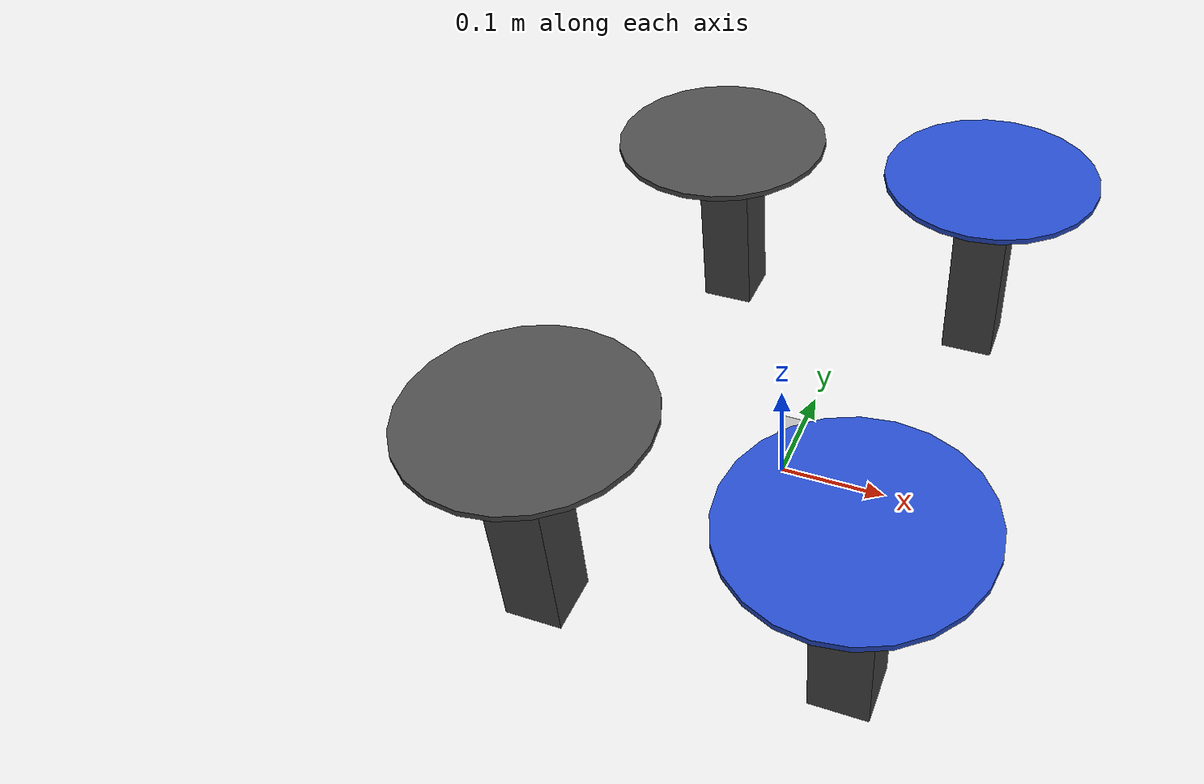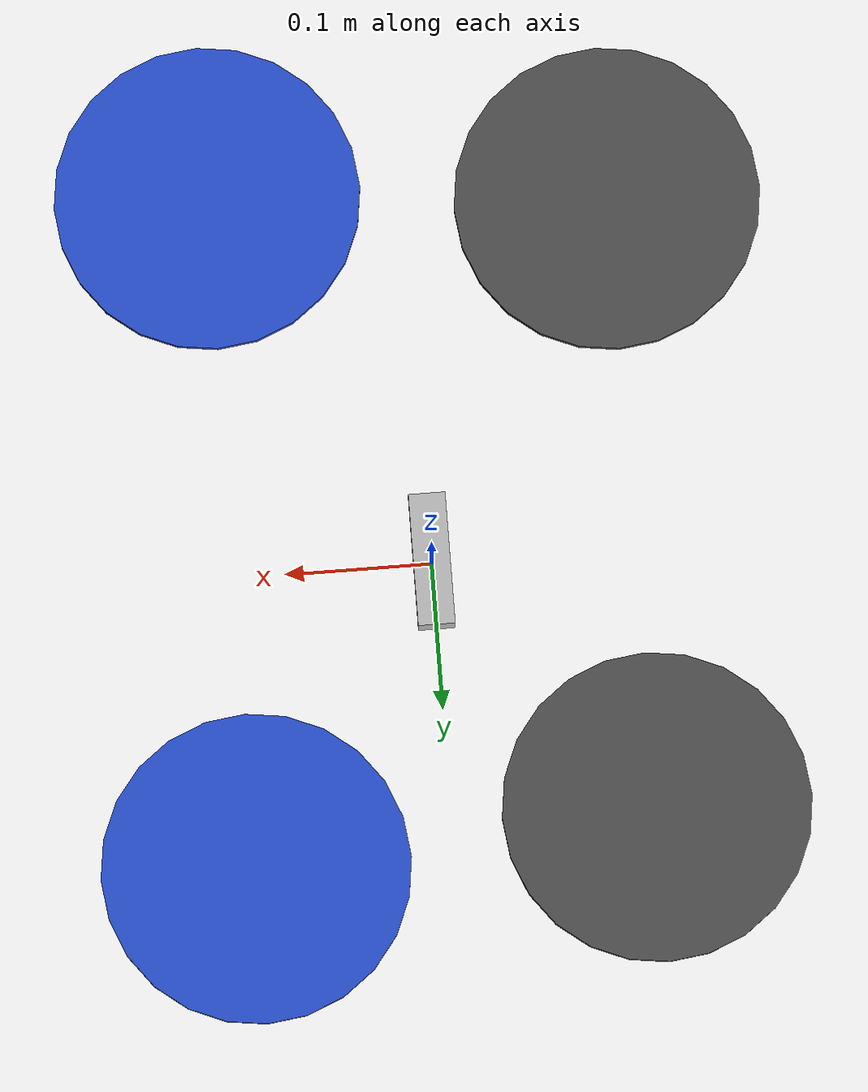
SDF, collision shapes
<?xml version='1.0'?>
<sdf version="1.6" >
  <model name="drone_with_camera">
    <include>
      <uri>model://iris_base</uri>
    </include>

    <include>
  <uri>model://realsense_camera</uri>
  </include>

    <joint name="camera_mount" type="fixed">
      <child>realsense_camera::camera_bottom_screw_frame</child>
      <parent>iris::base_link</parent>
      <axis>
        <xyz>0 0 1</xyz>
        <limit>
          <upper>0</upper>
          <lower>0</lower>
        </limit>
      </axis>
    </joint>

    <!-- plugins -->
    <plugin name="rotor_0_blade_1" filename="libLiftDragPlugin.so">
      <a0>0.3</a0>
      <alpha_stall>1.4</alpha_stall>
      <cla>4.2500</cla>
      <cda>0.10</cda>
      <cma>0.00</cma>
      <cla_stall>-0.025</cla_stall>
      <cda_stall>0.0</cda_stall>
      <cma_stall>0.0</cma_stall>
      <area>0.002</area>
      <air_density>1.2041</air_density>
      <cp>0.084 0 0</cp>
      <forward>0 1 0</forward>
      <upward>0 0 1</upward>
      <link_name>iris::rotor_0</link_name>
    </plugin>
    <plugin name="rotor_0_blade_2" filename="libLiftDragPlugin.so">
      <a0>0.3</a0>
      <alpha_stall>1.4</alpha_stall>
      <cla>4.2500</cla>
      <cda>0.10</cda>
      <cma>0.00</cma>
      <cla_stall>-0.025</cla_stall>
      <cda_stall>0.0</cda_stall>
      <cma_stall>0.0</cma_stall>
      <area>0.002</area>
      <air_density>1.2041</air_density>
      <cp>-0.084 0 0</cp>
      <forward>0 -1 0</forward>
      <upward>0 0 1</upward>
      <link_name>iris::rotor_0</link_name>
    </plugin>

    <plugin name="rotor_1_blade_1" filename="libLiftDragPlugin.so">
      <a0>0.3</a0>
      <alpha_stall>1.4</alpha_stall>
      <cla>4.2500</cla>
      <cda>0.10</cda>
      <cma>0.00</cma>
      <cla_stall>-0.025</cla_stall>
      <cda_stall>0.0</cda_stall>
      <cma_stall>0.0</cma_stall>
      <area>0.002</area>
      <air_density>1.2041</air_density>
      <cp>0.084 0 0</cp>
      <forward>0 1 0</forward>
      <upward>0 0 1</upward>
      <link_name>iris::rotor_1</link_name>
    </plugin>
    <plugin name="rotor_1_blade_2" filename="libLiftDragPlugin.so">
      <a0>0.3</a0>
      <alpha_stall>1.4</alpha_stall>
      <cla>4.2500</cla>
      <cda>0.10</cda>
      <cma>0.00</cma>
      <cla_stall>-0.025</cla_stall>
      <cda_stall>0.0</cda_stall>
      <cma_stall>0.0</cma_stall>
      <area>0.002</area>
      <air_density>1.2041</air_density>
      <cp>-0.084 0 0</cp>
      <forward>0 -1 0</forward>
      <upward>0 0 1</upward>
      <link_name>iris::rotor_1</link_name>
    </plugin>

    <plugin name="rotor_2_blade_1" filename="libLiftDragPlugin.so">
      <a0>0.3</a0>
      <alpha_stall>1.4</alpha_stall>
      <cla>4.2500</cla>
      <cda>0.10</cda>
      <cma>0.00</cma>
      <cla_stall>-0.025</cla_stall>
      <cda_stall>0.0</cda_stall>
      <cma_stall>0.0</cma_stall>
      <area>0.002</area>
      <air_density>1.2041</air_density>
      <cp>0.084 0 0</cp>
      <forward>0 -1 0</forward>
      <upward>0 0 1</upward>
      <link_name>iris::rotor_2</link_name>
    </plugin>
    <plugin name="rotor_2_blade_2" filename="libLiftDragPlugin.so">
      <a0>0.3</a0>
      <alpha_stall>1.4</alpha_stall>
      <cla>4.2500</cla>
      <cda>0.10</cda>
      <cma>0.00</cma>
      <cla_stall>-0.025</cla_stall>
      <cda_stall>0.0</cda_stall>
      <cma_stall>0.0</cma_stall>
      <area>0.002</area>
      <air_density>1.2041</air_density>
      <cp>-0.084 0 0</cp>
      <forward>0 1 0</forward>
      <upward>0 0 1</upward>
      <link_name>iris::rotor_2</link_name>
    </plugin>

    <plugin name="rotor_3_blade_1" filename="libLiftDragPlugin.so">
      <a0>0.3</a0>
      <alpha_stall>1.4</alpha_stall>
      <cla>4.2500</cla>
      <cda>0.10</cda>
      <cma>0.00</cma>
      <cla_stall>-0.025</cla_stall>
      <cda_stall>0.0</cda_stall>
      <cma_stall>0.0</cma_stall>
      <area>0.002</area>
      <air_density>1.2041</air_density>
      <cp>0.084 0 0</cp>
      <forward>0 -1 0</forward>
      <upward>0 0 1</upward>
      <link_name>iris::rotor_3</link_name>
    </plugin>
    <plugin name="rotor_3_blade_2" filename="libLiftDragPlugin.so">
      <a0>0.3</a0>
      <alpha_stall>1.4</alpha_stall>
      <cla>4.2500</cla>
      <cda>0.10</cda>
      <cma>0.00</cma>
      <cla_stall>-0.025</cla_stall>
      <cda_stall>0.0</cda_stall>
      <cma_stall>0.0</cma_stall>
      <area>0.002</area>
      <air_density>1.2041</air_density>
      <cp>-0.084 0 0</cp>
      <forward>0 1 0</forward>
      <upward>0 0 1</upward>
      <link_name>iris::rotor_3</link_name>
    </plugin>
    <plugin name="arducopter_plugin" filename="libArduPilotPlugin.so">
      <fdm_addr>127.0.0.1</fdm_addr>
      <fdm_port_in>9002</fdm_port_in>
      <fdm_port_out>9003</fdm_port_out>
      <!--
          Require by APM :
          Only change model and gazebo from XYZ to XY-Z coordinates
      -->
      <modelXYZToAirplaneXForwardZDown>0 0 0 3.141593 0 0</modelXYZToAirplaneXForwardZDown>
      <gazeboXYZToNED>0 0 0 3.141593 0 0</gazeboXYZToNED>
      <imuName>iris::iris/imu_link::imu_sensor</imuName>
      <connectionTimeoutMaxCount>5</connectionTimeoutMaxCount>
      <control channel="0">
      <!--
          incoming control command [0, 1]
          so offset it by 0 to get [0, 1]
          and divide max target by 1.
          offset = 0
          multiplier = 838 max rpm / 1 = 838
        -->
        <type>VELOCITY</type>
        <offset>0</offset>
        <p_gain>0.20</p_gain>
        <i_gain>0</i_gain>
        <d_gain>0</d_gain>
        <i_max>0</i_max>
        <i_min>0</i_min>
        <cmd_max>2.5</cmd_max>
        <cmd_min>-2.5</cmd_min>
        <jointName>iris::rotor_0_joint</jointName>
        <multiplier>838</multiplier>
        <controlVelocitySlowdownSim>1</controlVelocitySlowdownSim>
      </control>
      <control channel="1">
        <type>VELOCITY</type>
        <offset>0</offset>
        <p_gain>0.20</p_gain>
        <i_gain>0</i_gain>
        <d_gain>0</d_gain>
        <i_max>0</i_max>
        <i_min>0</i_min>
        <cmd_max>2.5</cmd_max>
        <cmd_min>-2.5</cmd_min>
        <jointName>iris::rotor_1_joint</jointName>
        <multiplier>838</multiplier>
        <controlVelocitySlowdownSim>1</controlVelocitySlowdownSim>
      </control>
      <control channel="2">
        <type>VELOCITY</type>
        <offset>0</offset>
        <p_gain>0.20</p_gain>
        <i_gain>0</i_gain>
        <d_gain>0</d_gain>
        <i_max>0</i_max>
        <i_min>0</i_min>
        <cmd_max>2.5</cmd_max>
        <cmd_min>-2.5</cmd_min>
        <jointName>iris::rotor_2_joint</jointName>
        <multiplier>-838</multiplier>
        <controlVelocitySlowdownSim>1</controlVelocitySlowdownSim>
      </control>
      <control channel="3">
        <type>VELOCITY</type>
        <offset>0</offset>
        <p_gain>0.20</p_gain>
        <i_gain>0</i_gain>
        <d_gain>0</d_gain>
        <i_max>0</i_max>
        <i_min>0</i_min>
        <cmd_max>2.5</cmd_max>
        <cmd_min>-2.5</cmd_min>
        <jointName>iris::rotor_3_joint</jointName>
        <multiplier>-838</multiplier>
        <controlVelocitySlowdownSim>1</controlVelocitySlowdownSim>
      </control>
    </plugin>

  </model>
</sdf>

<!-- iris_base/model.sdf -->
<sdf version='1.6'>
  <model name='iris'>
    <pose>0 0 0.194923 0 0 0</pose>
    <link name='base_link'>
      <velocity_decay>
        <linear>0.0</linear>
        <angular>0.0</angular>
      </velocity_decay>
      <inertial>
        <pose>0 0 0 0 0 0</pose>
        <mass>1.5</mass>
        <inertia>
          <ixx>0.008</ixx>
          <ixy>0</ixy>
          <ixz>0</ixz>
          <iyy>0.015</iyy>
          <iyz>0</iyz>
          <izz>0.017</izz>
        </inertia>
      </inertial>
      <collision name='base_link_collision_fl'>
        <pose>0.13 0.22 -0.08 0 0 0</pose>
        <geometry>
          <box>
            <size>0.05 0.05 0.18</size>
          </box>
        </geometry>
        <surface>
          <contact>
            <ode>
              <max_vel>100.0</max_vel>
              <min_depth>0.001</min_depth>
            </ode>
          </contact>
          <friction>
            <ode>
              <mu>1.0</mu>
              <mu2>1.0</mu2>
            </ode>
          </friction>
        </surface>
      </collision>
      <collision name='base_link_collision_fr'>
        <pose>0.13 -0.22 -0.08 0 0 0</pose>
        <geometry>
          <box>
            <size>0.05 0.05 0.18</size>
          </box>
        </geometry>
        <surface>
          <contact>
            <ode>
              <max_vel>100.0</max_vel>
              <min_depth>0.001</min_depth>
            </ode>
          </contact>
          <friction>
            <ode>
              <mu>1.0</mu>
              <mu2>1.0</mu2>
            </ode>
          </friction>
        </surface>
      </collision>
      <collision name='base_link_collision_br'>
        <pose>-0.13 -0.22 -0.08 0 0 0</pose>
        <geometry>
          <box>
            <size>0.05 0.05 0.18</size>
          </box>
        </geometry>
        <surface>
          <contact>
            <ode>
              <max_vel>100.0</max_vel>
              <min_depth>0.001</min_depth>
            </ode>
          </contact>
          <friction>
            <ode>
              <mu>1.0</mu>
              <mu2>1.0</mu2>
            </ode>
          </friction>
        </surface>
      </collision>
      <collision name='base_link_collision_bl'>
        <pose>-0.13 0.22 -0.08 0 0 0</pose>
        <geometry>
          <box>
            <size>0.05 0.05 0.18</size>
          </box>
        </geometry>
        <surface>
          <contact>
            <ode>
              <max_vel>100.0</max_vel>
              <min_depth>0.001</min_depth>
            </ode>
          </contact>
          <friction>
            <ode>
              <mu>1.0</mu>
              <mu2>1.0</mu2>
            </ode>
          </friction>
        </surface>
      </collision>
      <visual name='base_link_visual'>
        <geometry>
          <mesh>
            <uri>model://iris_base/meshes/iris.dae</uri>
          </mesh>
        </geometry>
        <material>
          <script>
            <name>Gazebo/DarkGrey</name>
          </script>
        </material>
      </visual>

      <visual name='front_left_leg_visual'>
        <pose>0.123 0.22 -0.11 0 0 0</pose>
        <geometry>
          <cylinder>
            <radius>0.005</radius>
            <length>0.17</length>
          </cylinder>
        </geometry>
        <material>
          <script>
            <name>Gazebo/FlatBlack</name>
            <uri>file://media/materials/scripts/gazebo.material</uri>
          </script>
        </material>
      </visual>
      <visual name='front_right_leg_visual'>
        <pose>0.123 -0.22 -0.11 0 0 0</pose>
        <geometry>
          <cylinder>
            <radius>0.005</radius>
            <length>0.17</length>
          </cylinder>
        </geometry>
        <material>
          <script>
            <name>Gazebo/FlatBlack</name>
            <uri>file://media/materials/scripts/gazebo.material</uri>
          </script>
        </material>
      </visual>
      <visual name='rear_left_leg_visual'>
        <pose>-0.140 0.21 -0.11 0 0 0</pose>
        <geometry>
          <cylinder>
            <radius>0.005</radius>
            <length>0.17</length>
          </cylinder>
        </geometry>
        <material>
          <script>
            <name>Gazebo/FlatBlack</name>
            <uri>file://media/materials/scripts/gazebo.material</uri>
          </script>
        </material>
      </visual>
      <visual name='rear_right_leg_visual'>
        <pose>-0.140 -0.21 -0.11 0 0 0</pose>
        <geometry>
          <cylinder>
            <radius>0.005</radius>
            <length>0.17</length>
          </cylinder>
        </geometry>
        <material>
          <script>
            <name>Gazebo/FlatBlack</name>
            <uri>file://media/materials/scripts/gazebo.material</uri>
          </script>
        </material>
      </visual>
    </link>
    <link name='iris/ground_truth/odometry_sensorgt_link'>
      <pose>0 0 0 0 -0 0</pose>
      <inertial>
        <pose>0 0 0 0 -0 0</pose>
        <mass>0.15</mass>
        <inertia>
          <ixx>0.0001</ixx>
          <ixy>0</ixy>
          <ixz>0</ixz>
          <iyy>0.0002</iyy>
          <iyz>0</iyz>
          <izz>0.0002</izz>
        </inertia>
      </inertial>
    </link>
    <joint name='iris/ground_truth/odometry_sensorgt_joint' type='revolute'>
      <child>iris/ground_truth/odometry_sensorgt_link</child>
      <parent>base_link</parent>
      <axis>
        <xyz>0 0 1</xyz>
        <limit>
          <lower>0</lower>
          <upper>0</upper>
          <effort>0</effort>
          <velocity>0</velocity>
        </limit>
        <dynamics>
          <damping>1.0</damping>
        </dynamics>
        <use_parent_model_frame>1</use_parent_model_frame>
      </axis>
      <physics>
        <ode>
          <implicit_spring_damper>1</implicit_spring_damper>
        </ode>
      </physics>
    </joint>
    <link name='iris/imu_link'>
      <inertial>
        <pose>0 0 0 0 0 0</pose>
        <mass>0.15</mass>
        <inertia>
          <ixx>0.00001</ixx>
          <ixy>0</ixy>
          <ixz>0</ixz>
          <iyy>0.00002</iyy>
          <iyz>0</iyz>
          <izz>0.00002</izz>
        </inertia>
      </inertial>
      <sensor name="imu_sensor" type="imu">
        <pose>0 0 0 3.141593 0 0</pose>
        <always_on>1</always_on>
        <update_rate>1000.0</update_rate>
      </sensor>
    </link>
    <joint name='iris/imu_joint' type='revolute'>
      <child>iris/imu_link</child>
      <parent>base_link</parent>
      <axis>
        <xyz>0 0 1</xyz>
        <limit>
          <lower>0</lower>
          <upper>0</upper>
          <effort>0</effort>
          <velocity>0</velocity>
        </limit>
        <dynamics>
          <damping>1.0</damping>
        </dynamics>
        <use_parent_model_frame>1</use_parent_model_frame>
      </axis>
      <physics>
        <ode>
          <implicit_spring_damper>1</implicit_spring_damper>
        </ode>
      </physics>
    </joint>
    <link name='rotor_0'>
      <pose>0.13 -0.22 0.023 0 -0 0</pose>
      <inertial>
        <pose>0 0 0 0 -0 0</pose>
        <mass>0.025</mass>
        <inertia>
          <ixx>9.75e-06</ixx>
          <ixy>0</ixy>
          <ixz>0</ixz>
          <iyy>0.000166704</iyy>
          <iyz>0</iyz>
          <izz>0.000167604</izz>
        </inertia>
      </inertial>
      <collision name='rotor_0_collision'>
        <pose>0 0 0 0 -0 0</pose>
        <geometry>
          <cylinder>
            <length>0.005</length>
            <radius>0.1</radius>
          </cylinder>
        </geometry>
        <surface>
          <contact>
            <ode/>
          </contact>
          <friction>
            <ode/>
          </friction>
        </surface>
      </collision>
      <visual name='rotor_0_visual'>
        <pose>0 0 0 0 -0 0</pose>
        <geometry>
          <mesh>
            <scale>1 1 1</scale>
            <uri>model://iris_base/meshes/iris_prop_ccw.dae</uri>
          </mesh>
        </geometry>
        <material>
          <script>
            <name>Gazebo/Blue</name>
            <uri>__default__</uri>
          </script>
        </material>
      </visual>
      <gravity>1</gravity>
      <velocity_decay/>
      <self_collide>0</self_collide>
    </link>
    <joint name='rotor_0_joint' type='revolute'>
      <child>rotor_0</child>
      <parent>base_link</parent>
      <axis>
        <xyz>0 0 1</xyz>
        <limit>
          <lower>-1e+16</lower>
          <upper>1e+16</upper>
        </limit>
        <dynamics>
          <damping>0.004</damping>
        </dynamics>
        <use_parent_model_frame>1</use_parent_model_frame>
      </axis>
      <physics>
        <ode>
          <implicit_spring_damper>1</implicit_spring_damper>
        </ode>
      </physics>
    </joint>
    <link name='rotor_1'>
      <pose>-0.13 0.2 0.023 0 -0 0</pose>
      <inertial>
        <pose>0 0 0 0 -0 0</pose>
        <mass>0.025</mass>
        <inertia>
          <ixx>9.75e-06</ixx>
          <ixy>0</ixy>
          <ixz>0</ixz>
          <iyy>0.000166704</iyy>
          <iyz>0</iyz>
          <izz>0.000167604</izz>
        </inertia>
      </inertial>
      <collision name='rotor_1_collision'>
        <pose>0 0 0 0 -0 0</pose>
        <geometry>
          <cylinder>
            <length>0.005</length>
            <radius>0.1</radius>
          </cylinder>
        </geometry>
        <surface>
          <contact>
            <ode/>
          </contact>
          <friction>
            <ode/>
          </friction>
        </surface>
      </collision>
      <visual name='rotor_1_visual'>
        <pose>0 0 0 0 -0 0</pose>
        <geometry>
          <mesh>
            <scale>1 1 1</scale>
            <uri>model://iris_base/meshes/iris_prop_ccw.dae</uri>
          </mesh>
        </geometry>
        <material>
          <script>
            <name>Gazebo/DarkGrey</name>
            <uri>__default__</uri>
          </script>
        </material>
      </visual>
      <gravity>1</gravity>
      <velocity_decay/>
      <self_collide>0</self_collide>
    </link>
    <joint name='rotor_1_joint' type='revolute'>
      <child>rotor_1</child>
      <parent>base_link</parent>
      <axis>
        <xyz>0 0 1</xyz>
        <limit>
          <lower>-1e+16</lower>
          <upper>1e+16</upper>
        </limit>
        <dynamics>
          <damping>0.004</damping>
        </dynamics>
        <use_parent_model_frame>1</use_parent_model_frame>
      </axis>
      <physics>
        <ode>
          <implicit_spring_damper>1</implicit_spring_damper>
        </ode>
      </physics>
    </joint>
    <link name='rotor_2'>
      <pose>0.13 0.22 0.023 0 -0 0</pose>
      <inertial>
        <pose>0 0 0 0 -0 0</pose>
        <mass>0.025</mass>
        <inertia>
          <ixx>9.75e-06</ixx>
          <ixy>0</ixy>
          <ixz>0</ixz>
          <iyy>0.000166704</iyy>
          <iyz>0</iyz>
          <izz>0.000167604</izz>
        </inertia>
      </inertial>
      <collision name='rotor_2_collision'>
        <pose>0 0 0 0 -0 0</pose>
        <geometry>
          <cylinder>
            <length>0.005</length>
            <radius>0.1</radius>
          </cylinder>
        </geometry>
        <surface>
          <contact>
            <ode/>
          </contact>
          <friction>
            <ode/>
          </friction>
        </surface>
      </collision>
      <visual name='rotor_2_visual'>
        <pose>0 0 0 0 -0 0</pose>
        <geometry>
          <mesh>
            <scale>1 1 1</scale>
            <uri>model://iris_base/meshes/iris_prop_cw.dae</uri>
          </mesh>
        </geometry>
        <material>
          <script>
            <name>Gazebo/Blue</name>
            <uri>__default__</uri>
          </script>
        </material>
      </visual>
      <gravity>1</gravity>
      <velocity_decay/>
      <self_collide>0</self_collide>
    </link>
    <joint name='rotor_2_joint' type='revolute'>
      <child>rotor_2</child>
      <parent>base_link</parent>
      <axis>
        <xyz>0 0 1</xyz>
        <limit>
          <lower>-1e+16</lower>
          <upper>1e+16</upper>
        </limit>
        <dynamics>
          <damping>0.004</damping>
        </dynamics>
        <use_parent_model_frame>1</use_parent_model_frame>
      </axis>
      <physics>
        <ode>
          <implicit_spring_damper>1</implicit_spring_damper>
        </ode>
      </physics>
    </joint>
    <link name='rotor_3'>
      <pose>-0.13 -0.2 0.023 0 -0 0</pose>
      <inertial>
        <pose>0 0 0 0 -0 0</pose>
        <mass>0.025</mass>
        <inertia>
          <ixx>9.75e-06</ixx>
          <ixy>0</ixy>
          <ixz>0</ixz>
          <iyy>0.000166704</iyy>
          <iyz>0</iyz>
          <izz>0.000167604</izz>
        </inertia>
      </inertial>
      <collision name='rotor_3_collision'>
        <pose>0 0 0 0 -0 0</pose>
        <geometry>
          <cylinder>
            <length>0.005</length>
            <radius>0.1</radius>
          </cylinder>
        </geometry>
        <surface>
          <contact>
            <ode/>
          </contact>
          <friction>
            <ode/>
          </friction>
        </surface>
      </collision>
      <visual name='rotor_3_visual'>
        <pose>0 0 0 0 -0 0</pose>
        <geometry>
          <mesh>
            <scale>1 1 1</scale>
            <uri>model://iris_base/meshes/iris_prop_cw.dae</uri>
          </mesh>
        </geometry>
        <material>
          <script>
            <name>Gazebo/DarkGrey</name>
            <uri>__default__</uri>
          </script>
        </material>
      </visual>
      <gravity>1</gravity>
      <velocity_decay/>
      <self_collide>0</self_collide>
    </link>
    <joint name='rotor_3_joint' type='revolute'>
      <child>rotor_3</child>
      <parent>base_link</parent>
      <axis>
        <xyz>0 0 1</xyz>
        <limit>
          <lower>-1e+16</lower>
          <upper>1e+16</upper>
        </limit>
        <dynamics>
          <damping>0.004</damping>
        </dynamics>
        <use_parent_model_frame>1</use_parent_model_frame>
      </axis>
      <physics>
        <ode>
          <implicit_spring_damper>1</implicit_spring_damper>
        </ode>
      </physics>
    </joint>
    <static>0</static>
  </model>
</sdf>

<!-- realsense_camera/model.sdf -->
<sdf version='1.6'>
  <model name='realsense_camera'>
    <link name='camera_bottom_screw_frame'>
      <pose frame=''>0 0 0 0 -0 0</pose>
      <inertial>
        <pose frame=''>0 0.0175 0.0125 0 -0.0 0</pose>
        <mass>0.564</mass>
        <inertia>
          <ixx>0.00388124</ixx>
          <ixy>0</ixy>
          <ixz>0</ixz>
          <iyy>0.00049894</iyy>
          <iyz>0</iyz>
          <izz>0.00387926</izz>
        </inertia>
      </inertial>
      <collision name='camera_bottom_screw_frame_fixed_joint_lump__camera_link_collision'>
        <pose frame=''>0 0 0.0125 0 -0 0</pose>
        <geometry>
          <box>
            <size>0.02505 0.09 0.025</size>
          </box>
        </geometry>
        <surface>
          <contact>
            <ode>
              <kp>1e+13</kp>
              <kd>1</kd>
            </ode>
          </contact>
          <friction>
            <ode>
              <mu2>1</mu2>
              <fdir1>0 0 0</fdir1>
            </ode>
          </friction>
        </surface>
      </collision>
      <visual name='camera_bottom_screw_frame_fixed_joint_lump__camera_link_visual'>
        <pose frame=''>0.0149 0 0.0125 1.5708 -0 1.5708</pose>
        <geometry>
          <mesh>
            <scale>1 1 1</scale>
            <uri>model://d435/meshes/d435.dae</uri>
          </mesh>
        </geometry>
        <material>
          <script>
            <uri>__default__</uri>
            <name>__default__</name>
          </script>
        </material>
      </visual>
      <gravity>1</gravity>
      <velocity_decay/>
      <self_collide>0</self_collide>
      <self_collide>0</self_collide>
      <enable_wind>0</enable_wind>
      <kinematic>0</kinematic>
      <gravity>1</gravity>
      <sensor name='cameracolor' type='camera'>
        <camera name='camera'>
          <horizontal_fov>1.21126</horizontal_fov>
          <image>
            <width>1920</width>
            <height>1080</height>
            <format>RGB_INT8</format>
          </image>
          <clip>
            <near>0.1</near>
            <far>100</far>
          </clip>
          <noise>
            <type>gaussian</type>
            <mean>0</mean>
            <stddev>0.007</stddev>
          </noise>
        </camera>
        <always_on>1</always_on>
        <update_rate>30</update_rate>
        <visualize>1</visualize>
        <pose frame=''>0 0.0175 0.0125 0 0.78539816339 0</pose>
      </sensor>
      <sensor name='cameraired1' type='camera'>
        <camera name='camera'>
          <horizontal_fov>1.48702</horizontal_fov>
          <image>
            <width>1280</width>
            <height>720</height>
            <format>L_INT8</format>
          </image>
          <clip>
            <near>0.1</near>
            <far>100</far>
          </clip>
          <noise>
            <type>gaussian</type>
            <mean>0</mean>
            <stddev>0.05</stddev>
          </noise>
        </camera>
        <always_on>1</always_on>
        <update_rate>90</update_rate>
        <visualize>0</visualize>
        <pose frame=''>0 0.0175 0.0125 0 0.78539816339 0</pose>
      </sensor>
      <sensor name='cameraired2' type='camera'>
        <camera name='camera'>
          <horizontal_fov>1.48702</horizontal_fov>
          <image>
            <width>1280</width>
            <height>720</height>
            <format>L_INT8</format>
          </image>
          <clip>
            <near>0.1</near>
            <far>100</far>
          </clip>
          <noise>
            <type>gaussian</type>
            <mean>0</mean>
            <stddev>0.05</stddev>
          </noise>
        </camera>
        <always_on>1</always_on>
        <update_rate>90</update_rate>
        <visualize>0</visualize>
        <pose frame=''>0 0.0175 0.0125 0 0.78539816339 0</pose>
      </sensor>
      <sensor name='cameradepth' type='depth'>
        <camera name='camera'>
          <horizontal_fov>1.48702</horizontal_fov>
          <image>
            <width>1280</width>
            <height>720</height>
          </image>
          <clip>
            <near>0.1</near>
            <far>100</far>
          </clip>
          <noise>
            <type>gaussian</type>
            <mean>0</mean>
            <stddev>0.1</stddev>
          </noise>
        </camera>
        <always_on>1</always_on>
        <update_rate>90</update_rate>
        <visualize>0</visualize>
        <pose frame=''>0 0.0175 0.0125 0 0.78539816339 0</pose>
      </sensor>
    </link>
    <static>0</static>
    <plugin name='camera' filename='librealsense_gazebo_plugin.so'>
      <prefix>camera</prefix>
      <depthUpdateRate>60.0</depthUpdateRate>
      <colorUpdateRate>60.0</colorUpdateRate>
      <infraredUpdateRate>60.0</infraredUpdateRate>
      <depthTopicName>depth/image_raw</depthTopicName>
      <depthCameraInfoTopicName>depth/camera_info</depthCameraInfoTopicName>
      <colorTopicName>color/image_raw</colorTopicName>
      <colorCameraInfoTopicName>color/camera_info</colorCameraInfoTopicName>
      <infrared1TopicName>infra1/image_raw</infrared1TopicName>
      <infrared1CameraInfoTopicName>infra1/camera_info</infrared1CameraInfoTopicName>
      <infrared2TopicName>infra2/image_raw</infrared2TopicName>
      <infrared2CameraInfoTopicName>infra2/camera_info</infrared2CameraInfoTopicName>
      <colorOpticalframeName>camera_color_optical_frame</colorOpticalframeName>
      <depthOpticalframeName>camera_depth_optical_frame</depthOpticalframeName>
      <infrared1OpticalframeName>camera_left_ir_optical_frame</infrared1OpticalframeName>
      <infrared2OpticalframeName>camera_right_ir_optical_frame</infrared2OpticalframeName>
      <rangeMinDepth>0.2</rangeMinDepth>
      <rangeMaxDepth>10.0</rangeMaxDepth>
      <pointCloud>false</pointCloud>
      <pointCloudTopicName>depth/points</pointCloudTopicName>
      <pointCloudCutoff>0.5</pointCloudCutoff>
    </plugin>
  </model>
</sdf>
